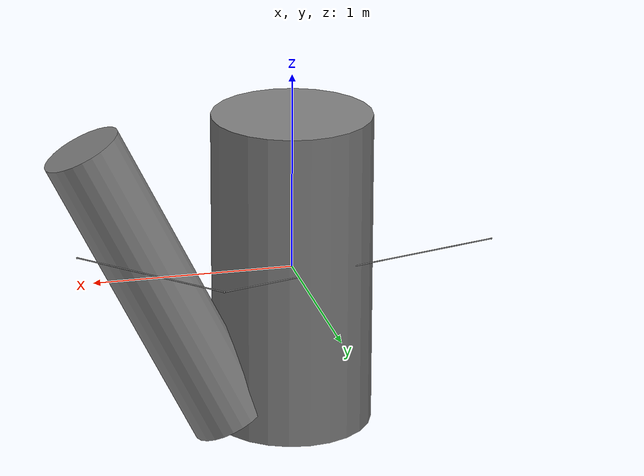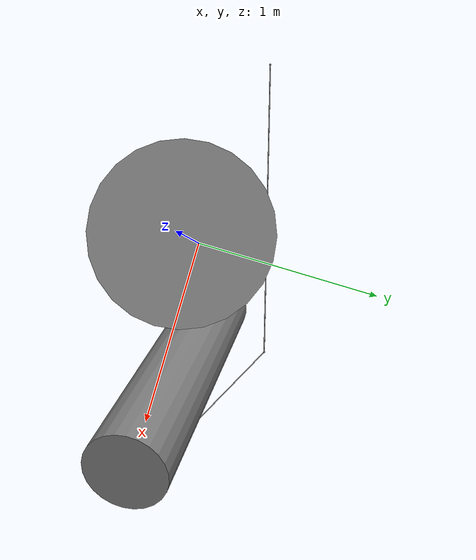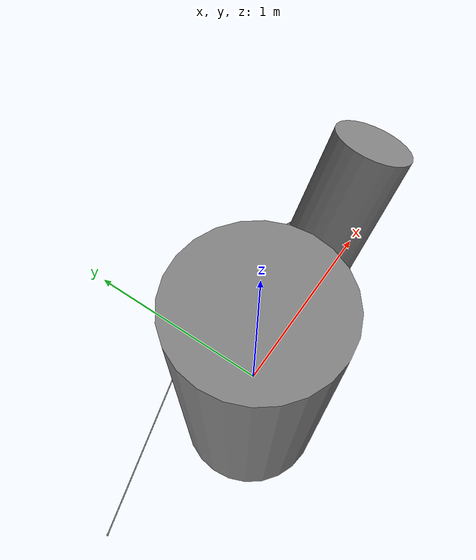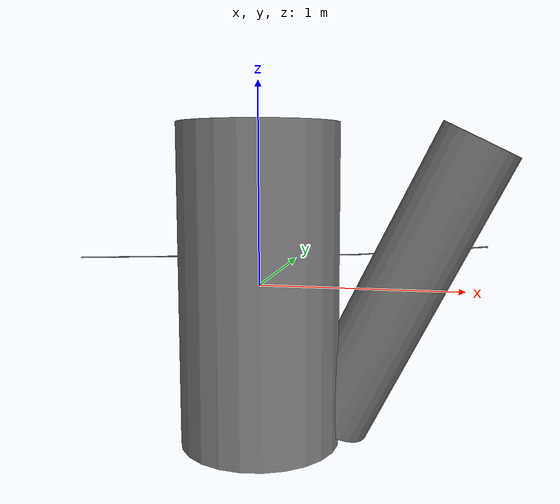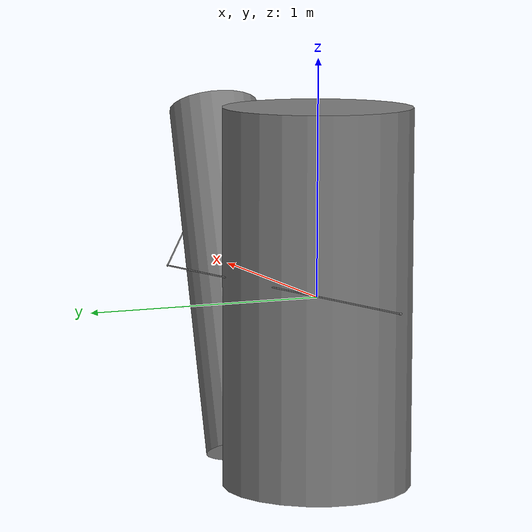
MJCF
<mujoco><compiler angle="radian"/><option timestep=".001" gravity="0 0 -1" integrator="Euler"><flag constraint="disable"/></option>
                <worldbody><geom name="wrap2" type="cylinder" pos=".7 .1 0" quat=".9 .1 .2 .3" size=".2 .8"/><site name="middle" pos=".45 .5 .1"/><geom name="wrap" type="cylinder" size=".4 .8" contype="0" conaffinity="0"/><site name="side" pos="0 0.6 0"/><site name="start" pos="-1 .1 .1"/>
                <body pos="1 .1 .2"><joint name="j" type="slide" axis="0 1 0" damping=".03" armature=".1"/>
                <joint type="hinge" axis="0 0 1" stiffness=".2" armature=".1"/><inertial pos=".1 0 .05" mass="1.4" diaginertia=".2 .3 .4"/><site name="end" pos=".1 .05 0"/></body></worldbody><tendon><spatial stiffness="2 .02 .01" damping=".03 .003 .001" springlength="1.4 1.6"><site site="start"/><geom geom="wrap" sidesite="side"/><site site="middle"/><geom geom="wrap2"/><site site="end"/></spatial></tendon><actuator><motor joint="j" gear=".7"/></actuator></mujoco>
